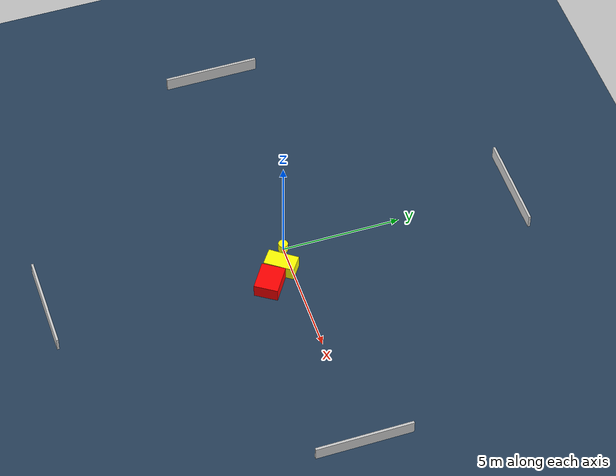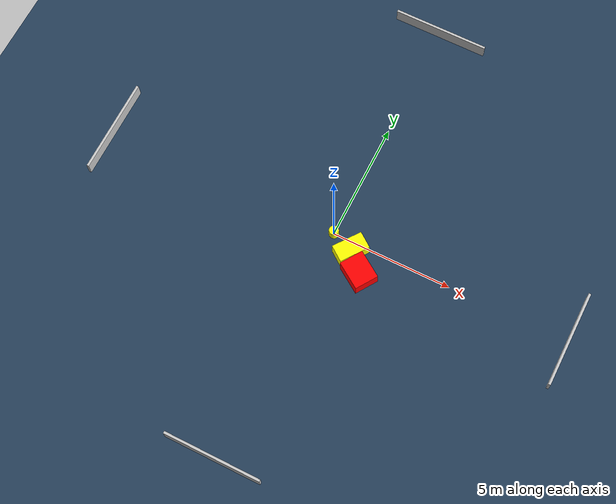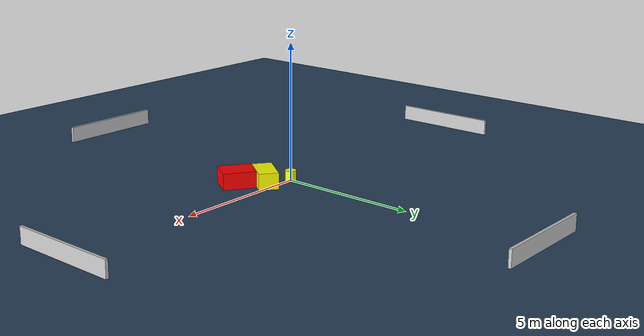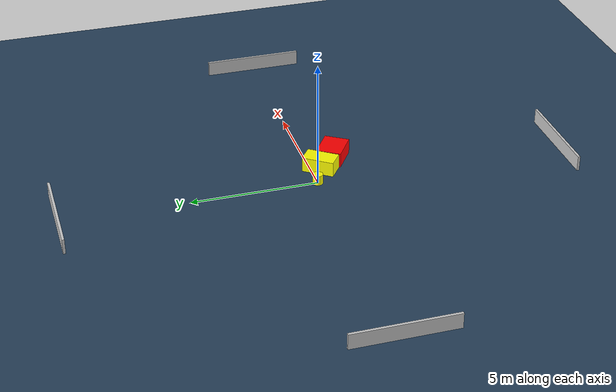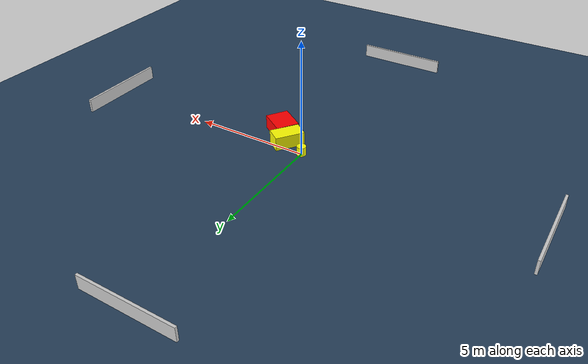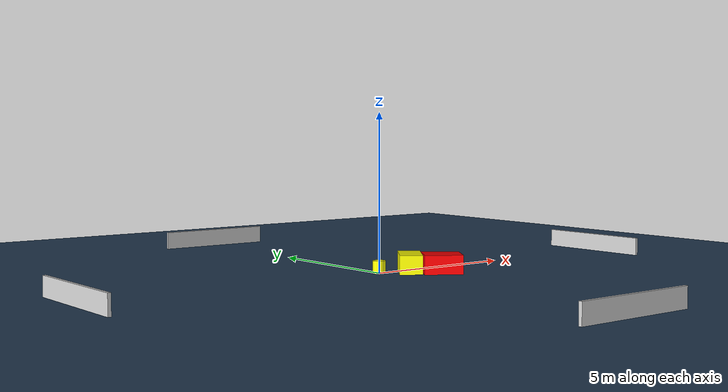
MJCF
<?xml version="1.0" ?>
<mujoco model="generated_environment">
  <option timestep="0.01" integrator="RK4" cone="elliptic"/>
  <default>
    <geom density="1"/>
  </default>
  <asset>
    <texture builtin="gradient" height="3072" name="skybox" rgb1="0.3 0.5 0.7" rgb2="0 0 0" type="skybox" width="512"/>
    <texture builtin="checker" height="300" name="groundplane" rgb1="0.2 0.3 0.4" rgb2="0.1 0.2 0.3" type="2d" width="300"/>
    <material name="groundplane" reflectance="0.2" texrepeat="5 5" texture="groundplane"/>
  </asset>
  <worldbody>
    <light dir="0 0 -1" directional="true" pos="0 0 1.5"/>
    <geom condim="3" friction="0.5 0.005 0.001" material="groundplane" name="floor" pos="0 0 0" size="0 0 0.05" type="plane"/>
    <body name="walls">
      <geom name="wall_1" condim="4" pos="-10.0 0.0 0.3" rgba="0.800000011920929 0.800000011920929 0.800000011920929 1.0" size="0.05 2.0 0.3" type="box"/>
      <geom name="wall_2" condim="4" pos="10.0 0.0 0.3" rgba="0.800000011920929 0.800000011920929 0.800000011920929 1.0" size="0.05 2.0 0.3" type="box"/>
      <geom name="wall_3" condim="4" pos="0.0 -10.0 0.3" rgba="0.800000011920929 0.800000011920929 0.800000011920929 1.0" size="2.0 0.05 0.3" type="box"/>
      <geom name="wall_4" condim="4" pos="0.0 10.0 0.3" rgba="0.800000011920929 0.800000011920929 0.800000011920929 1.0" size="2.0 0.05 0.3" type="box"/>
    </body>
    <body name="robot">
      <joint name="joint_x" type="slide" pos="0 0 0" axis="1 0 0"/>
      <joint name="joint_y" type="slide" pos="0 0 0" axis="0 1 0"/>
      <geom name="robot" type="cylinder" pos="0.0 0.0 0.2" size="0.2 0.2 0.0" mass="5.0" friction="1.0 0.005 0.0001" condim="4" rgba="1.0 1.0 0.0 1.0"/>
    </body>
    <body name="obstacle_1_movable">
      <geom name="obstacle_1_movable" condim="4" pos="0.9294561033245011 -0.3861132164548954 0.3" euler="0 0 233.8073917764849" friction="0.0 0.005 0.001" rgba="1.0 1.0 0.0 1.0" size="0.638917942914802 0.3593087066653521 0.3" type="box" mass="0.1"/>
      <joint type="free"/>
    </body>
    <body name="obstacle_2_static">
      <geom name="obstacle_2_static" condim="4" pos="1.631754222197268 -1.101023796641415 0.3" euler="0 0 146.499514962879" friction="0.0 0.005 0.001" rgba="1.0 0.0 0.0 1.0" size="0.6042718162067282 0.49619049049426817 0.3" type="box"/>
    </body>
  </worldbody>
  <actuator>
    <motor name="actuator_x" joint="joint_x" gear="1" ctrlrange="-1 1"/>
    <motor name="actuator_y" joint="joint_y" gear="1" ctrlrange="-1 1"/>
  </actuator>
</mujoco>
